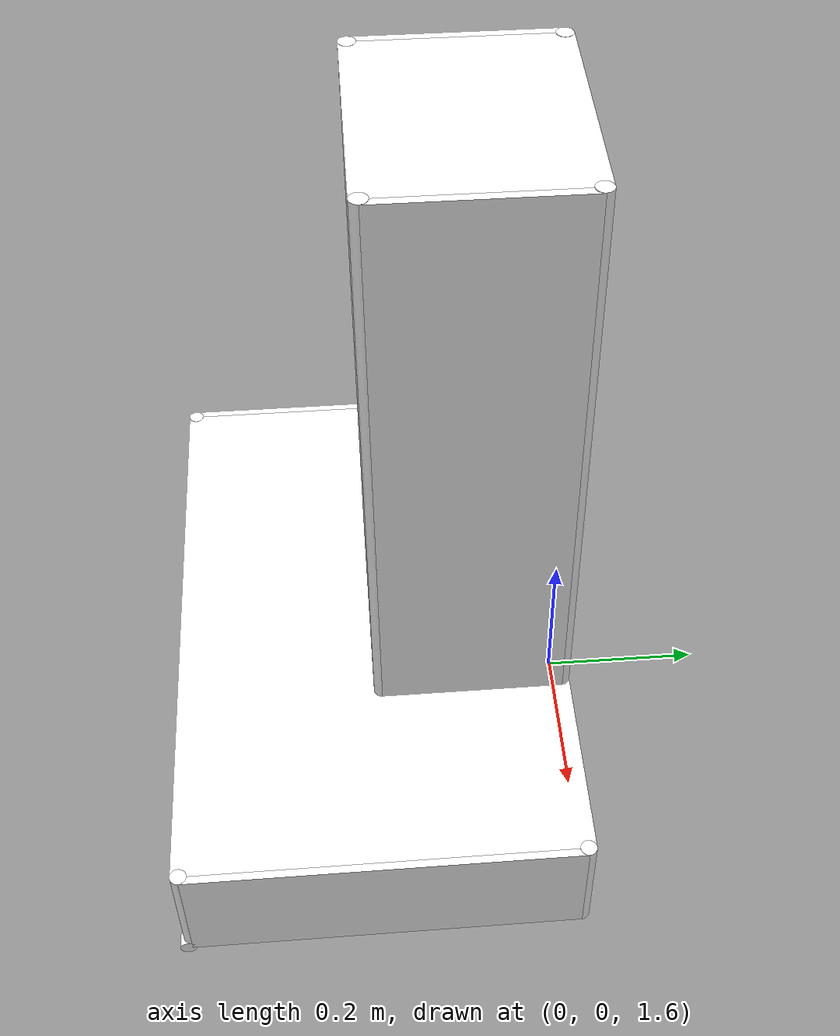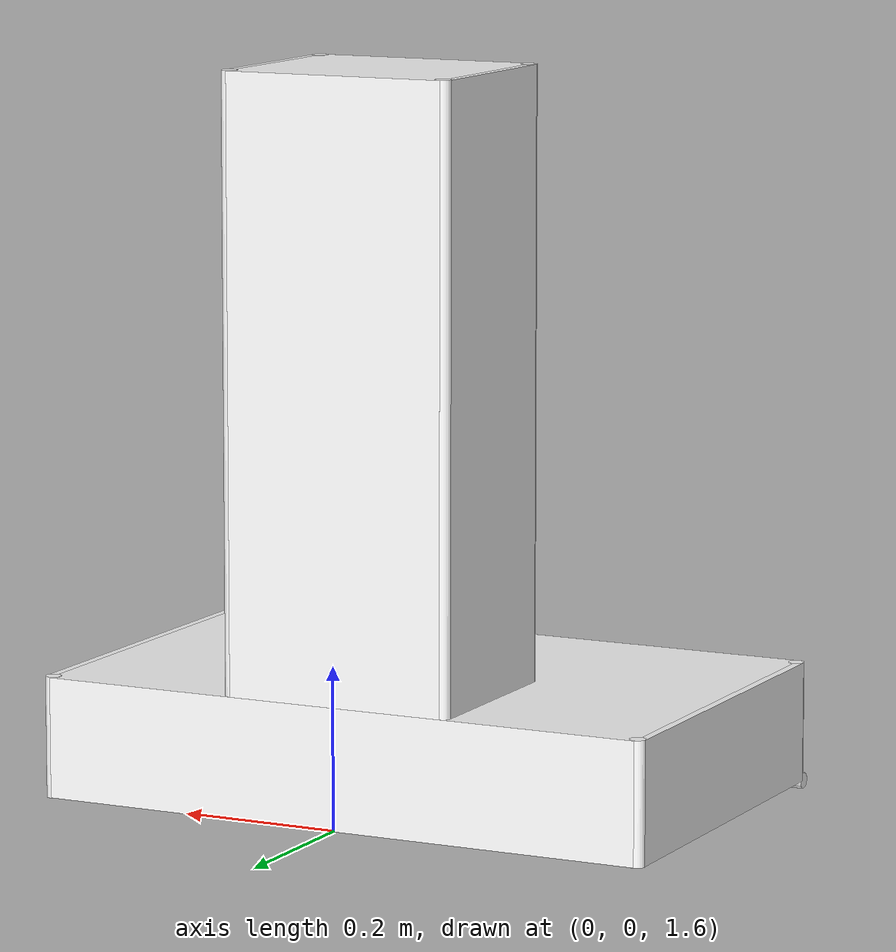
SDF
<?xml version="1.0"?>
<sdf version="1.6">
  <model name="range_hood">
    <static>true</static>
    <link name="link">
      <visual name="canopy_a">
        <pose>0 -0.25 1.675 0 0 0</pose>
        <geometry><box><size>0.78 0.5 0.15</size></box></geometry>
        <material><pbr><metal><albedo_map>textures/stainless.png</albedo_map><metalness>0.15</metalness><roughness>0.25</roughness></metal></pbr><ambient>1 1 1 1</ambient><diffuse>1 1 1 1</diffuse><specular>1 1 1 1</specular><emissive>0 0 0 1</emissive></material>
      </visual>
      <visual name="canopy_b0">
        <pose>-0.395 -0.25 1.675 0 0 0</pose>
        <geometry><box><size>0.01 0.48 0.15</size></box></geometry>
        <material><pbr><metal><albedo_map>textures/stainless.png</albedo_map><metalness>0.15</metalness><roughness>0.25</roughness></metal></pbr><ambient>1 1 1 1</ambient><diffuse>1 1 1 1</diffuse><specular>1 1 1 1</specular><emissive>0 0 0 1</emissive></material>
      </visual>
      <visual name="canopy_b1">
        <pose>0.395 -0.25 1.675 0 0 0</pose>
        <geometry><box><size>0.01 0.48 0.15</size></box></geometry>
        <material><pbr><metal><albedo_map>textures/stainless.png</albedo_map><metalness>0.15</metalness><roughness>0.25</roughness></metal></pbr><ambient>1 1 1 1</ambient><diffuse>1 1 1 1</diffuse><specular>1 1 1 1</specular><emissive>0 0 0 1</emissive></material>
      </visual>
      <visual name="canopy_c0">
        <pose>-0.39 -0.49 1.675 0 0 0</pose>
        <geometry><cylinder><radius>0.01</radius><length>0.1506</length></cylinder></geometry>
        <material><pbr><metal><albedo_map>textures/stainless.png</albedo_map><metalness>0.15</metalness><roughness>0.25</roughness></metal></pbr><ambient>1 1 1 1</ambient><diffuse>1 1 1 1</diffuse><specular>1 1 1 1</specular><emissive>0 0 0 1</emissive></material>
      </visual>
      <visual name="canopy_c1">
        <pose>-0.39 -0.01 1.675 0 0 0</pose>
        <geometry><cylinder><radius>0.01</radius><length>0.15078</length></cylinder></geometry>
        <material><pbr><metal><albedo_map>textures/stainless.png</albedo_map><metalness>0.15</metalness><roughness>0.25</roughness></metal></pbr><ambient>1 1 1 1</ambient><diffuse>1 1 1 1</diffuse><specular>1 1 1 1</specular><emissive>0 0 0 1</emissive></material>
      </visual>
      <visual name="canopy_c2">
        <pose>0.39 -0.49 1.675 0 0 0</pose>
        <geometry><cylinder><radius>0.01</radius><length>0.15096</length></cylinder></geometry>
        <material><pbr><metal><albedo_map>textures/stainless.png</albedo_map><metalness>0.15</metalness><roughness>0.25</roughness></metal></pbr><ambient>1 1 1 1</ambient><diffuse>1 1 1 1</diffuse><specular>1 1 1 1</specular><emissive>0 0 0 1</emissive></material>
      </visual>
      <visual name="canopy_c3">
        <pose>0.39 -0.01 1.675 0 0 0</pose>
        <geometry><cylinder><radius>0.01</radius><length>0.15114</length></cylinder></geometry>
        <material><pbr><metal><albedo_map>textures/stainless.png</albedo_map><metalness>0.15</metalness><roughness>0.25</roughness></metal></pbr><ambient>1 1 1 1</ambient><diffuse>1 1 1 1</diffuse><specular>1 1 1 1</specular><emissive>0 0 0 1</emissive></material>
      </visual>
      <visual name="canopy_lip">
        <pose>0 -0.495 1.6 0 1.5708 0</pose>
        <geometry><cylinder><radius>0.01</radius><length>0.8</length></cylinder></geometry>
        <material><pbr><metal><albedo_map>textures/stainless.png</albedo_map><metalness>0.15</metalness><roughness>0.25</roughness></metal></pbr><ambient>1 1 1 1</ambient><diffuse>1 1 1 1</diffuse><specular>1 1 1 1</specular><emissive>0 0 0 1</emissive></material>
      </visual>
      <visual name="chimney_a">
        <pose>0 -0.125 2.125 0 0 0</pose>
        <geometry><box><size>0.28 0.25 0.75</size></box></geometry>
        <material><pbr><metal><albedo_map>textures/stainless.png</albedo_map><metalness>0.15</metalness><roughness>0.25</roughness></metal></pbr><ambient>1 1 1 1</ambient><diffuse>1 1 1 1</diffuse><specular>1 1 1 1</specular><emissive>0 0 0 1</emissive></material>
      </visual>
      <visual name="chimney_b0">
        <pose>-0.145 -0.125 2.125 0 0 0</pose>
        <geometry><box><size>0.01 0.23 0.75</size></box></geometry>
        <material><pbr><metal><albedo_map>textures/stainless.png</albedo_map><metalness>0.15</metalness><roughness>0.25</roughness></metal></pbr><ambient>1 1 1 1</ambient><diffuse>1 1 1 1</diffuse><specular>1 1 1 1</specular><emissive>0 0 0 1</emissive></material>
      </visual>
      <visual name="chimney_b1">
        <pose>0.145 -0.125 2.125 0 0 0</pose>
        <geometry><box><size>0.01 0.23 0.75</size></box></geometry>
        <material><pbr><metal><albedo_map>textures/stainless.png</albedo_map><metalness>0.15</metalness><roughness>0.25</roughness></metal></pbr><ambient>1 1 1 1</ambient><diffuse>1 1 1 1</diffuse><specular>1 1 1 1</specular><emissive>0 0 0 1</emissive></material>
      </visual>
      <visual name="chimney_c0">
        <pose>-0.14 -0.24 2.125 0 0 0</pose>
        <geometry><cylinder><radius>0.01</radius><length>0.7506</length></cylinder></geometry>
        <material><pbr><metal><albedo_map>textures/stainless.png</albedo_map><metalness>0.15</metalness><roughness>0.25</roughness></metal></pbr><ambient>1 1 1 1</ambient><diffuse>1 1 1 1</diffuse><specular>1 1 1 1</specular><emissive>0 0 0 1</emissive></material>
      </visual>
      <visual name="chimney_c1">
        <pose>-0.14 -0.01 2.125 0 0 0</pose>
        <geometry><cylinder><radius>0.01</radius><length>0.75078</length></cylinder></geometry>
        <material><pbr><metal><albedo_map>textures/stainless.png</albedo_map><metalness>0.15</metalness><roughness>0.25</roughness></metal></pbr><ambient>1 1 1 1</ambient><diffuse>1 1 1 1</diffuse><specular>1 1 1 1</specular><emissive>0 0 0 1</emissive></material>
      </visual>
      <visual name="chimney_c2">
        <pose>0.14 -0.24 2.125 0 0 0</pose>
        <geometry><cylinder><radius>0.01</radius><length>0.75096</length></cylinder></geometry>
        <material><pbr><metal><albedo_map>textures/stainless.png</albedo_map><metalness>0.15</metalness><roughness>0.25</roughness></metal></pbr><ambient>1 1 1 1</ambient><diffuse>1 1 1 1</diffuse><specular>1 1 1 1</specular><emissive>0 0 0 1</emissive></material>
      </visual>
      <visual name="chimney_c3">
        <pose>0.14 -0.01 2.125 0 0 0</pose>
        <geometry><cylinder><radius>0.01</radius><length>0.75114</length></cylinder></geometry>
        <material><pbr><metal><albedo_map>textures/stainless.png</albedo_map><metalness>0.15</metalness><roughness>0.25</roughness></metal></pbr><ambient>1 1 1 1</ambient><diffuse>1 1 1 1</diffuse><specular>1 1 1 1</specular><emissive>0 0 0 1</emissive></material>
      </visual>
      <collision name="canopy">
        <pose>0 -0.25 1.675 0 0 0</pose>
        <geometry><box><size>0.8 0.5 0.15</size></box></geometry>
      </collision>
      <collision name="chimney">
        <pose>0 -0.125 2.125 0 0 0</pose>
        <geometry><box><size>0.3 0.25 0.75</size></box></geometry>
      </collision>
    </link>
    <allow_auto_disable>1</allow_auto_disable>
  </model>
</sdf>
